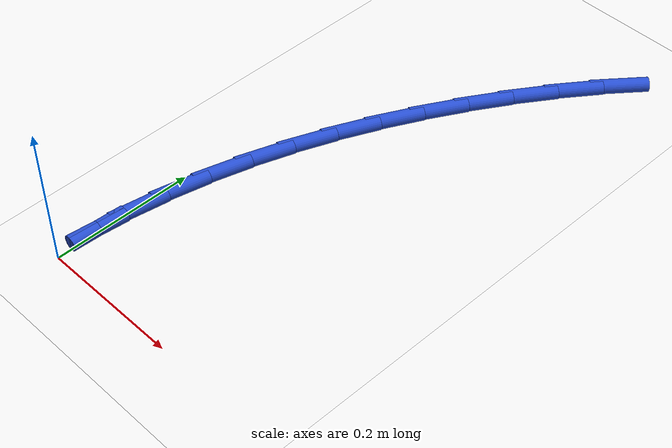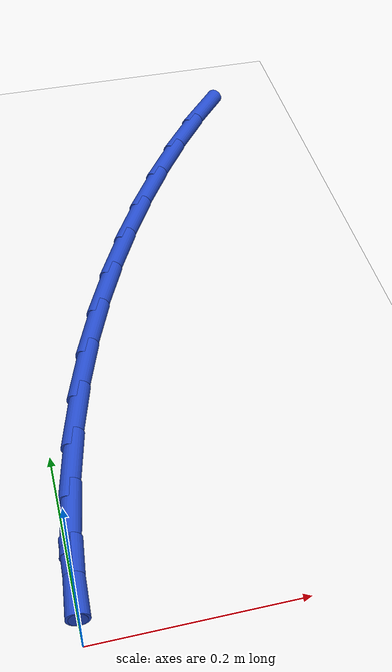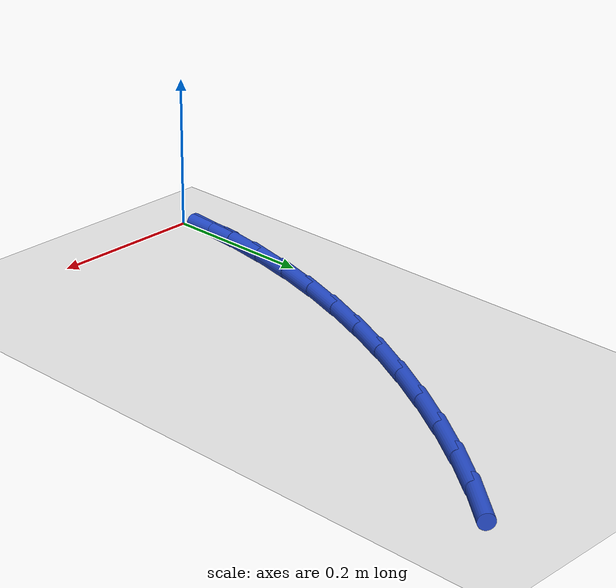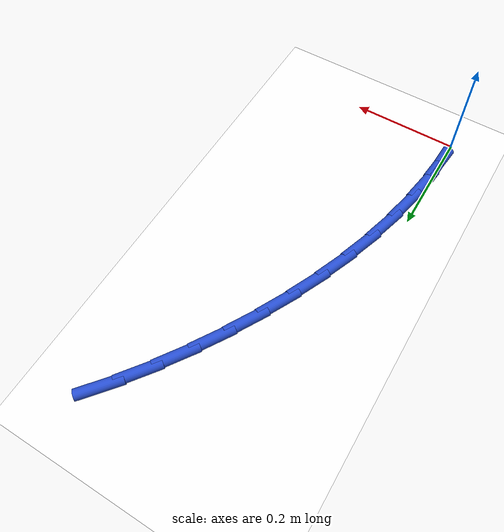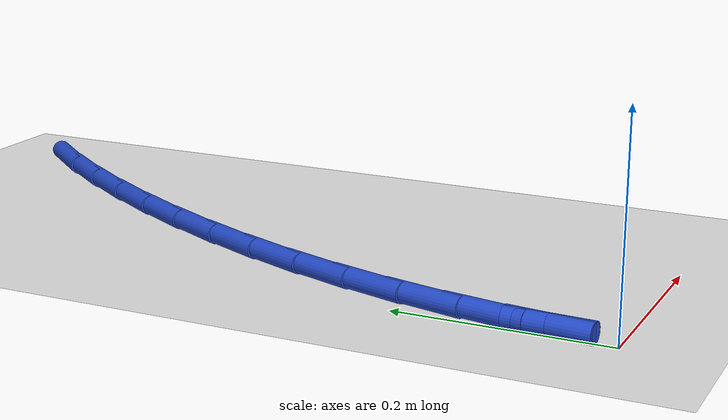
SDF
<sdf version="1.6">
 <world name="default">
  <model name="ground_plane">
   <static>1</static>
   <link name="link">
    <collision name="collision">
     <geometry><plane><normal>0 0 1</normal><size>100 100</size></plane></geometry>
     <surface><friction><ode><mu>100</mu><mu2>50</mu2></ode></friction></surface>
    </collision>
    <visual name="visual">
     <cast_shadows>0</cast_shadows>
     <geometry><plane><normal>0 0 1</normal><size>100 100</size></plane></geometry>
     <material>
      <script><uri>file://media/materials/scripts/gazebo.material</uri><name>Gazebo/WhiteGlow</name></script>
     </material>
    </visual>
   </link>
  </model>
  <model name="line">
   <link name="link_1">
    <pose>0.0025300619887707334 0.059516186233444256 0.01 0 1.57 1.464749663887766</pose>
    <collision name="collision">
     <geometry><cylinder><radius>0.01</radius><length>0.08</length></cylinder></geometry>
    </collision>
    <visual name="visual">
     <material>
      <script><name>Gazebo/Blue</name><uri>file://media/materials/scripts/gazebo.material</uri></script>
     </material>
     <geometry><cylinder><radius>0.01</radius><length>0.08</length></cylinder></geometry>
    </visual>
   </link>
   <link name="link_2">
    <pose>0.008817919117206962 0.11858705566318578 0.01 0 1.57 1.403542212570054</pose>
    <collision name="collision">
     <geometry><cylinder><radius>0.01</radius><length>0.08</length></cylinder></geometry>
    </collision>
    <visual name="visual">
     <material>
      <script><name>Gazebo/Blue</name><uri>file://media/materials/scripts/gazebo.material</uri></script>
     </material>
     <geometry><cylinder><radius>0.01</radius><length>0.08</length></cylinder></geometry>
    </visual>
   </link>
   <link name="link_3">
    <pose>0.018708347627950404 0.17716876145247598 0.01 0 1.57 1.3449475818006928</pose>
    <collision name="collision">
     <geometry><cylinder><radius>0.01</radius><length>0.08</length></cylinder></geometry>
    </collision>
    <visual name="visual">
     <material>
      <script><name>Gazebo/Blue</name><uri>file://media/materials/scripts/gazebo.material</uri></script>
     </material>
     <geometry><cylinder><radius>0.01</radius><length>0.08</length></cylinder></geometry>
    </visual>
   </link>
   <link name="link_4">
    <pose>0.03204612376364281 0.23521745676456654 0.01 0 1.57 1.2891317822988257</pose>
    <collision name="collision">
     <geometry><cylinder><radius>0.01</radius><length>0.08</length></cylinder></geometry>
    </collision>
    <visual name="visual">
     <material>
      <script><name>Gazebo/Blue</name><uri>file://media/materials/scripts/gazebo.material</uri></script>
     </material>
     <geometry><cylinder><radius>0.01</radius><length>0.08</length></cylinder></geometry>
    </visual>
   </link>
   <link name="link_5">
    <pose>0.04867602376692588 0.292689294762709 0.01 0 1.57 1.2361772945769316</pose>
    <collision name="collision">
     <geometry><cylinder><radius>0.01</radius><length>0.08</length></cylinder></geometry>
    </collision>
    <visual name="visual">
     <material>
      <script><name>Gazebo/Blue</name><uri>file://media/materials/scripts/gazebo.material</uri></script>
     </material>
     <geometry><cylinder><radius>0.01</radius><length>0.08</length></cylinder></geometry>
    </visual>
   </link>
   <link name="link_6">
    <pose>0.06844282388044134 0.3495404286101546 0.01 0 1.57 1.1860954542656745</pose>
    <collision name="collision">
     <geometry><cylinder><radius>0.01</radius><length>0.08</length></cylinder></geometry>
    </collision>
    <visual name="visual">
     <material>
      <script><name>Gazebo/Blue</name><uri>file://media/materials/scripts/gazebo.material</uri></script>
     </material>
     <geometry><cylinder><radius>0.01</radius><length>0.08</length></cylinder></geometry>
    </visual>
   </link>
   <link name="link_7">
    <pose>0.09119130034683096 0.40572701147015533 0.01 0 1.57 1.1388401892122524</pose>
    <collision name="collision">
     <geometry><cylinder><radius>0.01</radius><length>0.08</length></cylinder></geometry>
    </collision>
    <visual name="visual">
     <material>
      <script><name>Gazebo/Blue</name><uri>file://media/materials/scripts/gazebo.material</uri></script>
     </material>
     <geometry><cylinder><radius>0.01</radius><length>0.08</length></cylinder></geometry>
    </visual>
   </link>
   <link name="link_8">
    <pose>0.11676622940873646 0.46120519650596253 0.01 0 1.57 1.0943215303945102</pose>
    <collision name="collision">
     <geometry><cylinder><radius>0.01</radius><length>0.08</length></cylinder></geometry>
    </collision>
    <visual name="visual">
     <material>
      <script><name>Gazebo/Blue</name><uri>file://media/materials/scripts/gazebo.material</uri></script>
     </material>
     <geometry><cylinder><radius>0.01</radius><length>0.08</length></cylinder></geometry>
    </visual>
   </link>
   <link name="link_9">
    <pose>0.14501238730879956 0.5159311368808278 0.01 0 1.57 1.052319036159866</pose>
    <collision name="collision">
     <geometry><cylinder><radius>0.01</radius><length>0.08</length></cylinder></geometry>
    </collision>
    <visual name="visual">
     <material>
      <script><name>Gazebo/Blue</name><uri>file://media/materials/scripts/gazebo.material</uri></script>
     </material>
     <geometry><cylinder><radius>0.01</radius><length>0.08</length></cylinder></geometry>
    </visual>
   </link>
   <link name="link_10">
    <pose>0.17577689644282393 0.5698527159521446 0.01 0 1.57 1.0107544277945963</pose>
    <collision name="collision">
     <geometry><cylinder><radius>0.01</radius><length>0.08</length></cylinder></geometry>
    </collision>
    <visual name="visual">
     <material>
      <script><name>Gazebo/Blue</name><uri>file://media/materials/scripts/gazebo.material</uri></script>
     </material>
     <geometry><cylinder><radius>0.01</radius><length>0.08</length></cylinder></geometry>
    </visual>
   </link>
   <link name="link_11">
    <pose>0.2089511940542471 0.622761614493223 0.01 0 1.57 0.9675158376752154</pose>
    <collision name="collision">
     <geometry><cylinder><radius>0.01</radius><length>0.08</length></cylinder></geometry>
    </collision>
    <visual name="visual">
     <material>
      <script><name>Gazebo/Blue</name><uri>file://media/materials/scripts/gazebo.material</uri></script>
     </material>
     <geometry><cylinder><radius>0.01</radius><length>0.08</length></cylinder></geometry>
    </visual>
   </link>
   <link name="link_12">
    <pose>0.24446625536565758 0.6743101483727733 0.01 0 1.57 0.9220316841816916</pose>
    <collision name="collision">
     <geometry><cylinder><radius>0.01</radius><length>0.08</length></cylinder></geometry>
    </collision>
    <visual name="visual">
     <material>
      <script><name>Gazebo/Blue</name><uri>file://media/materials/scripts/gazebo.material</uri></script>
     </material>
     <geometry><cylinder><radius>0.01</radius><length>0.08</length></cylinder></geometry>
    </visual>
   </link>
   <link name="link_13">
    <pose>0.28225444248128406 0.7241457449287405 0.01 0 1.57 0.8737735443724705</pose>
    <collision name="collision">
     <geometry><cylinder><radius>0.01</radius><length>0.08</length></cylinder></geometry>
    </collision>
    <visual name="visual">
     <material>
      <script><name>Gazebo/Blue</name><uri>file://media/materials/scripts/gazebo.material</uri></script>
     </material>
     <geometry><cylinder><radius>0.01</radius><length>0.08</length></cylinder></geometry>
    </visual>
   </link>
   <link name="link_111">
    <pose>0.00256839657283401 0.05947373095081804 0.01 0 1.57 1.5276377482415269</pose>
    <collision name="collision">
     <geometry><cylinder><radius>0.01</radius><length>0.08</length></cylinder></geometry>
    </collision>
    <visual name="visual">
     <material>
      <script><name>Gazebo/Blue</name><uri>file://media/materials/scripts/gazebo.material</uri></script>
     </material>
     <geometry><cylinder><radius>0.01</radius><length>0.08</length></cylinder></geometry>
    </visual>
   </link>
  </model>
 </world>
</sdf>
